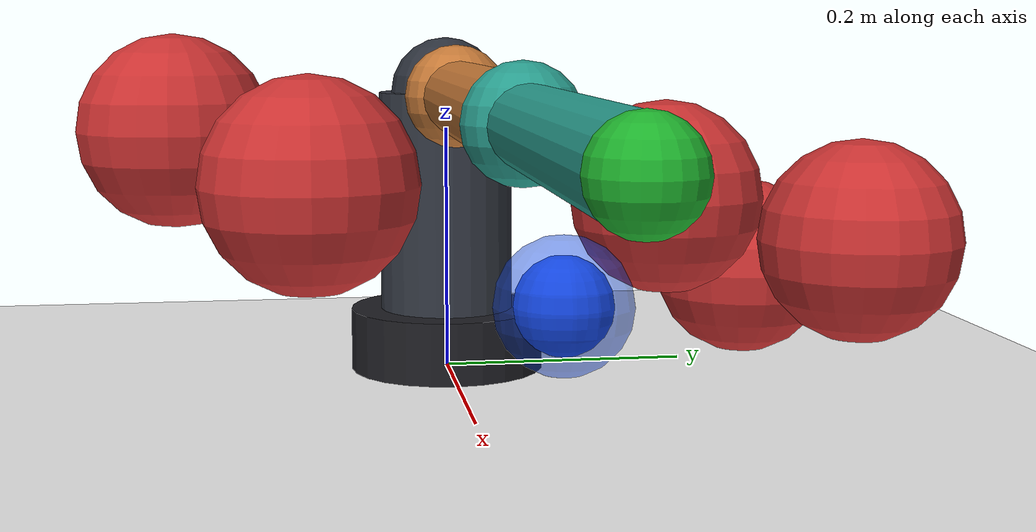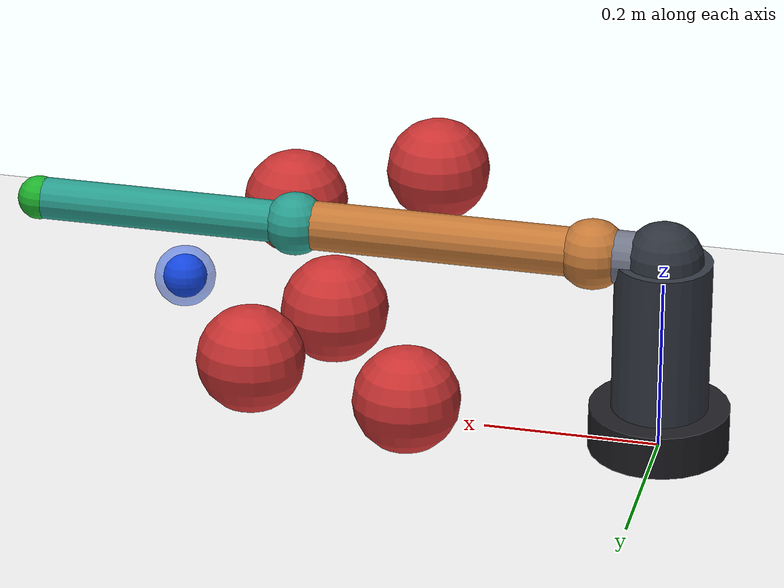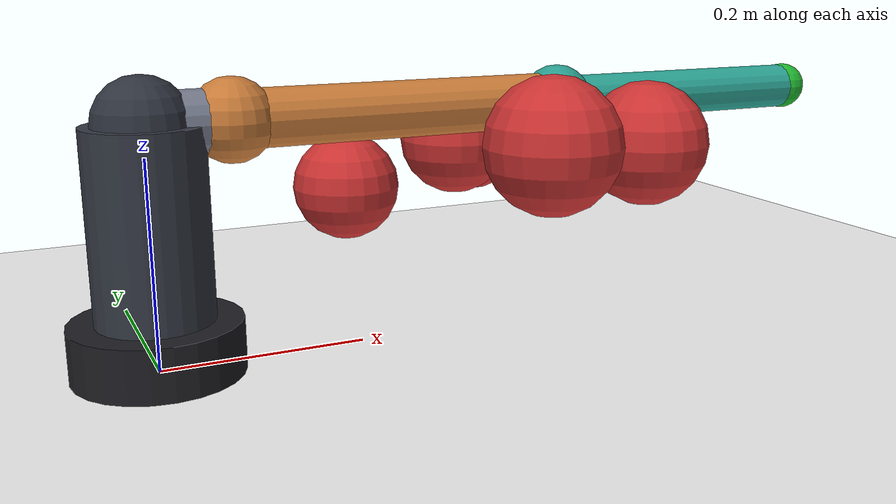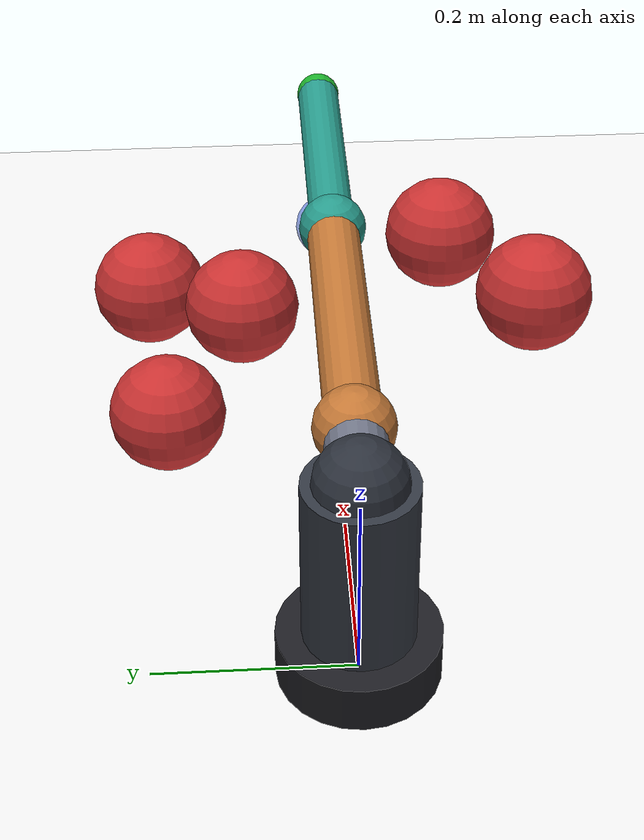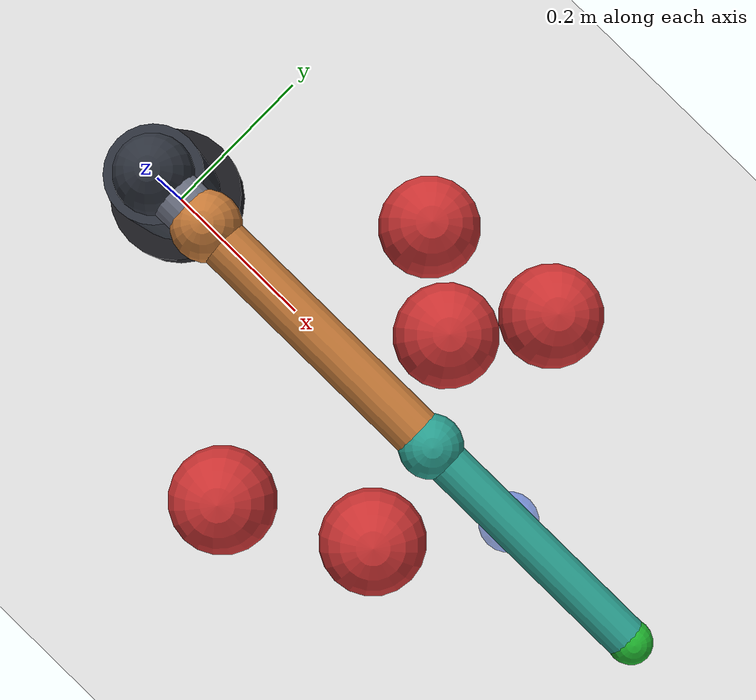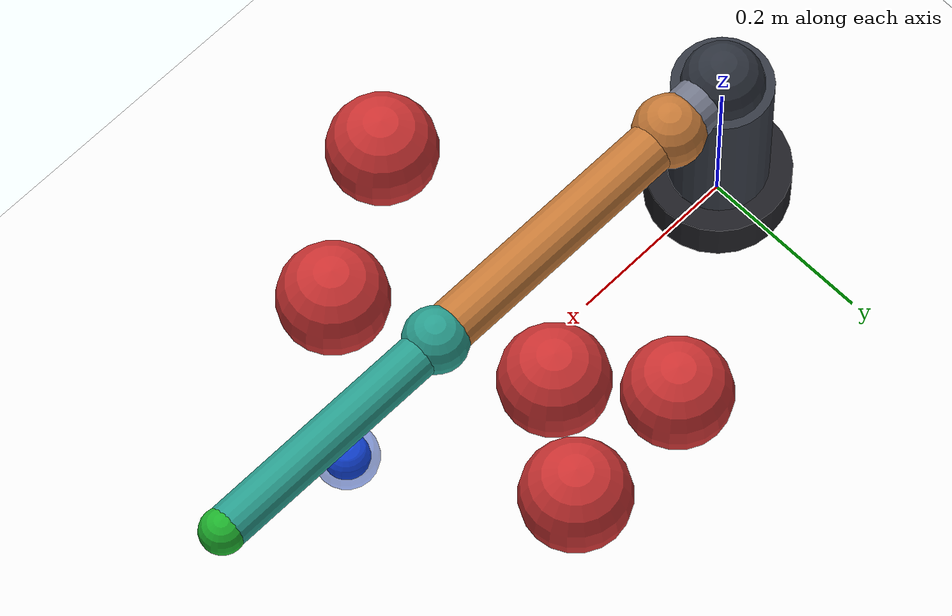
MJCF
<mujoco model="me5406_arm">
  <compiler angle="radian" autolimits="true"/>
  <option gravity="0 0 0" timestep="0.01" integrator="RK4"/>

  <default>
    <joint damping="1.0" armature="0.02" limited="true"/>
    <geom type="capsule" size="0.025" rgba="0.55 0.58 0.64 1"/>
    <motor ctrllimited="true" ctrlrange="-1 1"/>
  </default>

  <worldbody>
    <light pos="0 0 2"/>
    <geom type="plane" size="2 2 0.1" rgba="0.95 0.95 0.95 1"/>

    <body name="base" pos="0 0 0">
      <geom type="cylinder" size="0.08 0.05" rgba="0.12 0.12 0.14 1"/>

      <body name="shoulder_yaw" pos="0 0 0.14">
        <joint name="joint1" type="hinge" axis="0 0 1" range="-3.14 3.14"/>
        <geom type="cylinder" size="0.055 0.09" rgba="0.2 0.22 0.26 1"/>
        <geom type="sphere" pos="0 0 0.09" size="0.045" rgba="0.18 0.2 0.24 1"/>

        <body name="shoulder_link" pos="0 0 0.09">
          <geom type="capsule" fromto="0 0 0 0.08 0 0" size="0.03" rgba="0.45 0.47 0.54 1"/>

          <body name="upper_arm" pos="0.08 0 0">
            <joint name="joint2" type="hinge" axis="0 1 0" range="-1.7 1.2"/>
            <geom type="sphere" size="0.04" rgba="0.78 0.48 0.22 1"/>
            <geom name="link1_geom" fromto="0 0 0 0.34 0 0" size="0.028" rgba="0.78 0.48 0.22 1"/>

            <body name="forearm" pos="0.34 0 0">
              <joint name="joint3" type="hinge" axis="0 1 0" range="-2.2 1.2"/>
              <geom type="sphere" size="0.036" rgba="0.16 0.62 0.56 1"/>
              <geom name="link2_geom" fromto="0 0 0 0.30 0 0" size="0.024" rgba="0.16 0.62 0.56 1"/>

              <body name="ee" pos="0.30 0 0">
                <geom name="ee_geom" type="sphere" size="0.025" rgba="0.12 0.7 0.18 1"/>
                <site name="ee_site" pos="0 0 0" size="0.02" rgba="0.1 0.8 0.1 1"/>
              </body>
            </body>
          </body>
        </body>
      </body>
    </body>

    <body name="target" pos="0.55 0 0.15" mocap="true">
      <geom name="target_geom" type="sphere" size="0.035" contype="0" conaffinity="0" rgba="0.1 0.3 0.9 0.5"/>
      <site name="target_site" pos="0 0 0" size="0.025" rgba="0.1 0.3 0.9 1"/>
    </body>

    <body name="obstacle_0" pos="0.35 0.10 0.18" mocap="true">
      <geom name="obstacle_0_geom" type="sphere" size="0.06" rgba="0.8 0.2 0.2 1"/>
    </body>
    <body name="obstacle_1" pos="0.45 -0.12 0.2" mocap="true">
      <geom name="obstacle_1_geom" type="sphere" size="0.06" rgba="0.8 0.2 0.2 1"/>
    </body>
    <body name="obstacle_2" pos="0.25 0.18 0.12" mocap="true">
      <geom name="obstacle_2_geom" type="sphere" size="0.06" rgba="0.8 0.2 0.2 1"/>
    </body>
    <body name="obstacle_3" pos="0.42 0.2 0.16" mocap="true">
      <geom name="obstacle_3_geom" type="sphere" size="0.06" rgba="0.8 0.2 0.2 1"/>
    </body>
    <body name="obstacle_4" pos="0.30 -0.2 0.22" mocap="true">
      <geom name="obstacle_4_geom" type="sphere" size="0.06" rgba="0.8 0.2 0.2 1"/>
    </body>
  </worldbody>

  <actuator>
    <motor name="joint1_motor" joint="joint1" gear="35"/>
    <motor name="joint2_motor" joint="joint2" gear="30"/>
    <motor name="joint3_motor" joint="joint3" gear="25"/>
  </actuator>
</mujoco>
